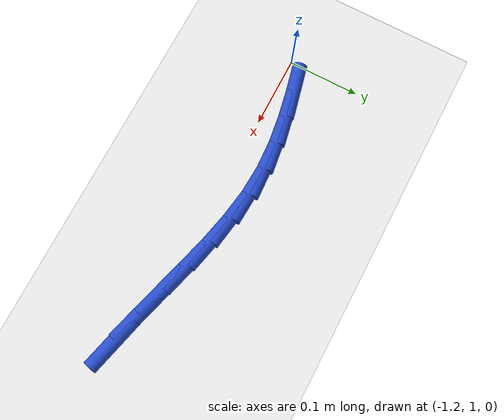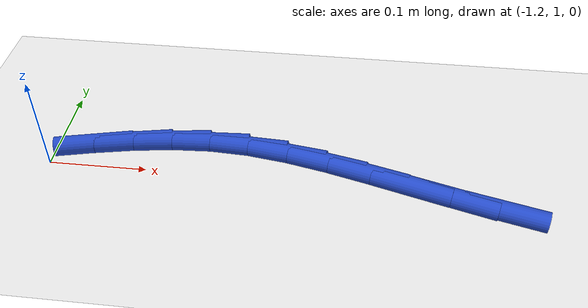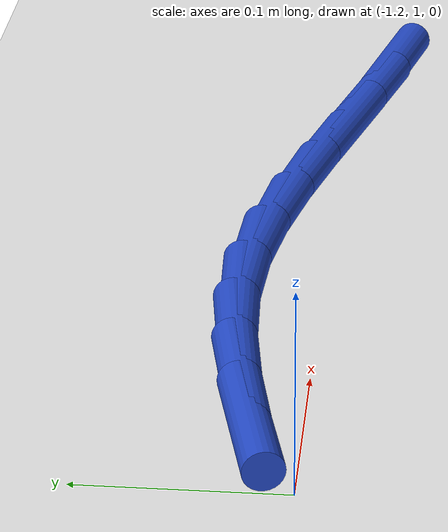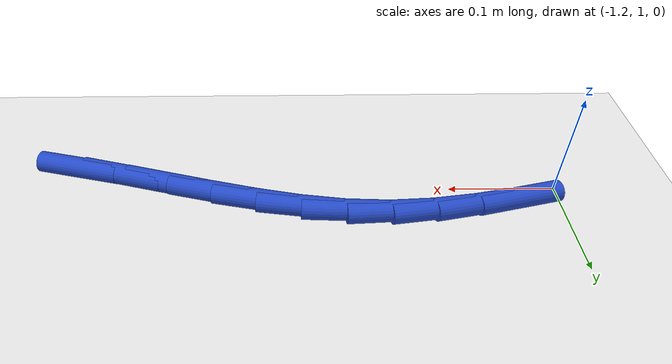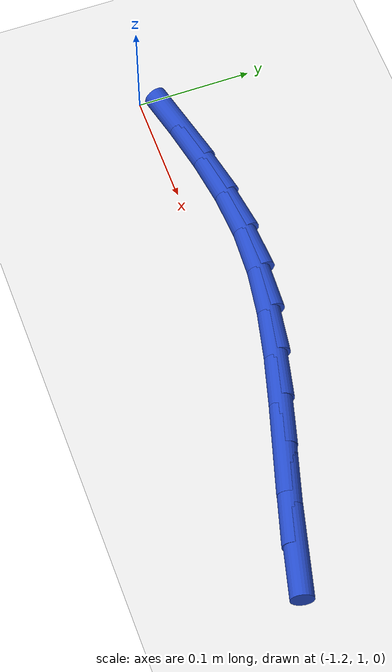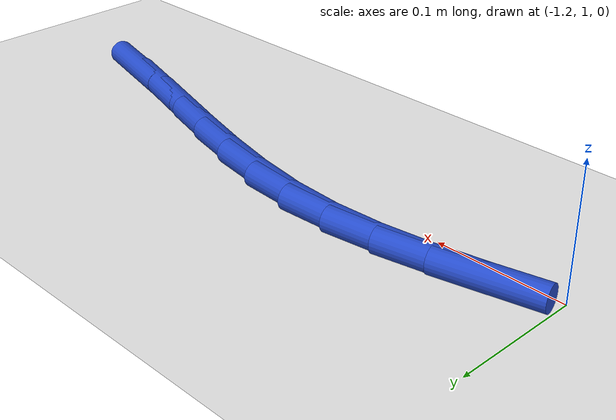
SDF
<sdf version="1.6">
 <world name="default">
  <model name="ground_plane">
   <static>1</static>
   <link name="link">
    <collision name="collision">
     <geometry><plane><normal>0 0 1</normal><size>100 100</size></plane></geometry>
     <surface><friction><ode><mu>100</mu><mu2>50</mu2></ode></friction></surface>
    </collision>
    <visual name="visual">
     <cast_shadows>0</cast_shadows>
     <geometry><plane><normal>0 0 1</normal><size>100 100</size></plane></geometry>
     <material>
      <script><uri>file://media/materials/scripts/gazebo.material</uri><name>Gazebo/WhiteGlow</name></script>
     </material>
    </visual>
   </link>
  </model>
  <model name="line">
   <link name="link_32">
    <pose>-0.7467460814729165 0.9745071234151442 0.01 0 1.57 -0.24643039365060754</pose>
    <collision name="collision">
     <geometry><cylinder><radius>0.01</radius><length>0.08</length></cylinder></geometry>
    </collision>
    <visual name="visual">
     <material>
      <script><name>Gazebo/Blue</name><uri>file://media/materials/scripts/gazebo.material</uri></script>
     </material>
     <geometry><cylinder><radius>0.01</radius><length>0.08</length></cylinder></geometry>
    </visual>
   </link>
   <link name="link_33">
    <pose>-0.7906193504310315 0.9855431381958333 0.01 0 1.57 -0.2745067943539725</pose>
    <collision name="collision">
     <geometry><cylinder><radius>0.01</radius><length>0.08</length></cylinder></geometry>
    </collision>
    <visual name="visual">
     <material>
      <script><name>Gazebo/Blue</name><uri>file://media/materials/scripts/gazebo.material</uri></script>
     </material>
     <geometry><cylinder><radius>0.01</radius><length>0.08</length></cylinder></geometry>
    </visual>
   </link>
   <link name="link_34">
    <pose>-0.8337127152648784 0.9976789287410628 0.01 0 1.57 -0.28028764187250527</pose>
    <collision name="collision">
     <geometry><cylinder><radius>0.01</radius><length>0.08</length></cylinder></geometry>
    </collision>
    <visual name="visual">
     <material>
      <script><name>Gazebo/Blue</name><uri>file://media/materials/scripts/gazebo.material</uri></script>
     </material>
     <geometry><cylinder><radius>0.01</radius><length>0.08</length></cylinder></geometry>
    </visual>
   </link>
   <link name="link_35">
    <pose>-0.8760849190826946 1.0098764361488493 0.01 0 1.57 -0.26280711233090204</pose>
    <collision name="collision">
     <geometry><cylinder><radius>0.01</radius><length>0.08</length></cylinder></geometry>
    </collision>
    <visual name="visual">
     <material>
      <script><name>Gazebo/Blue</name><uri>file://media/materials/scripts/gazebo.material</uri></script>
     </material>
     <geometry><cylinder><radius>0.01</radius><length>0.08</length></cylinder></geometry>
    </visual>
   </link>
   <link name="link_36">
    <pose>-0.9177947049927172 1.0210976015172093 0.01 0 1.57 -0.22033915591999895</pose>
    <collision name="collision">
     <geometry><cylinder><radius>0.01</radius><length>0.08</length></cylinder></geometry>
    </collision>
    <visual name="visual">
     <material>
      <script><name>Gazebo/Blue</name><uri>file://media/materials/scripts/gazebo.material</uri></script>
     </material>
     <geometry><cylinder><radius>0.01</radius><length>0.08</length></cylinder></geometry>
    </visual>
   </link>
   <link name="link_37">
    <pose>-0.9589008161031842 1.0303043659441598 0.01 0 1.57 -0.1505804078906732</pose>
    <collision name="collision">
     <geometry><cylinder><radius>0.01</radius><length>0.08</length></cylinder></geometry>
    </collision>
    <visual name="visual">
     <material>
      <script><name>Gazebo/Blue</name><uri>file://media/materials/scripts/gazebo.material</uri></script>
     </material>
     <geometry><cylinder><radius>0.01</radius><length>0.08</length></cylinder></geometry>
    </visual>
   </link>
   <link name="link_38">
    <pose>-0.9994619955223315 1.0364586705277163 0.01 0 1.57 -0.05203244879713401</pose>
    <collision name="collision">
     <geometry><cylinder><radius>0.01</radius><length>0.08</length></cylinder></geometry>
    </collision>
    <visual name="visual">
     <material>
      <script><name>Gazebo/Blue</name><uri>file://media/materials/scripts/gazebo.material</uri></script>
     </material>
     <geometry><cylinder><radius>0.01</radius><length>0.08</length></cylinder></geometry>
    </visual>
   </link>
   <link name="link_39">
    <pose>-1.0395393336311038 1.038545876527806 0.01 0 1.57 0.0543418125721716</pose>
    <collision name="collision">
     <geometry><cylinder><radius>0.01</radius><length>0.08</length></cylinder></geometry>
    </collision>
    <visual name="visual">
     <material>
      <script><name>Gazebo/Blue</name><uri>file://media/materials/scripts/gazebo.material</uri></script>
     </material>
     <geometry><cylinder><radius>0.01</radius><length>0.08</length></cylinder></geometry>
    </visual>
   </link>
   <link name="link_40">
    <pose>-1.0792774042038664 1.0363843095998966 0.01 0 1.57 0.1391484082744587</pose>
    <collision name="collision">
     <geometry><cylinder><radius>0.01</radius><length>0.08</length></cylinder></geometry>
    </collision>
    <visual name="visual">
     <material>
      <script><name>Gazebo/Blue</name><uri>file://media/materials/scripts/gazebo.material</uri></script>
     </material>
     <geometry><cylinder><radius>0.01</radius><length>0.08</length></cylinder></geometry>
    </visual>
   </link>
   <link name="link_41">
    <pose>-1.1189249381145328 1.0308315338863847 0.01 0 1.57 0.19881181890761923</pose>
    <collision name="collision">
     <geometry><cylinder><radius>0.01</radius><length>0.08</length></cylinder></geometry>
    </collision>
    <visual name="visual">
     <material>
      <script><name>Gazebo/Blue</name><uri>file://media/materials/scripts/gazebo.material</uri></script>
     </material>
     <geometry><cylinder><radius>0.01</radius><length>0.08</length></cylinder></geometry>
    </visual>
   </link>
   <link name="link_42">
    <pose>-1.1587372118044492 1.022810422621665 0.01 0 1.57 0.23344811970610313</pose>
    <collision name="collision">
     <geometry><cylinder><radius>0.01</radius><length>0.08</length></cylinder></geometry>
    </collision>
    <visual name="visual">
     <material>
      <script><name>Gazebo/Blue</name><uri>file://media/materials/scripts/gazebo.material</uri></script>
     </material>
     <geometry><cylinder><radius>0.01</radius><length>0.08</length></cylinder></geometry>
    </visual>
   </link>
  </model>
 </world>
</sdf>
